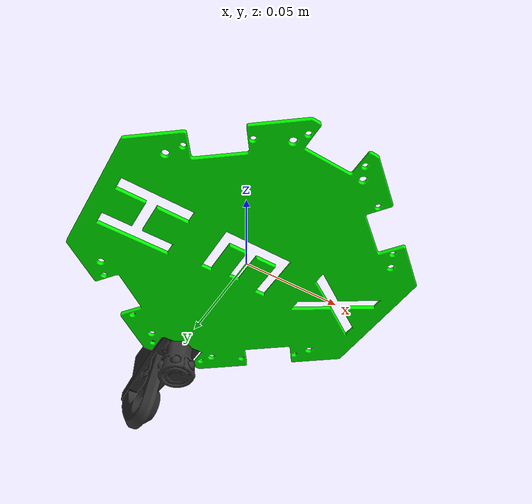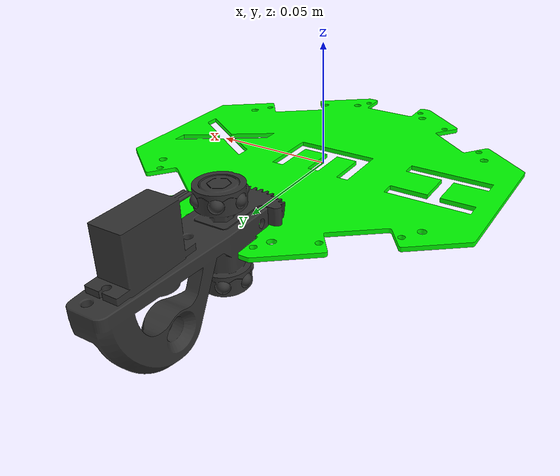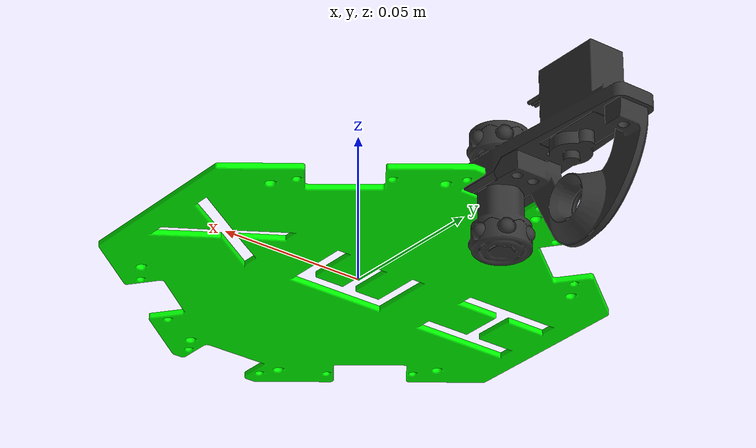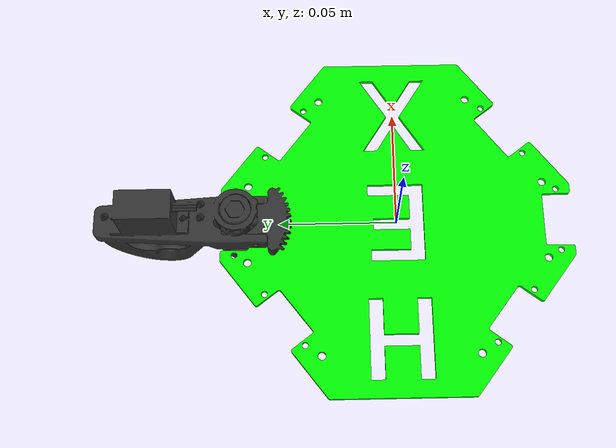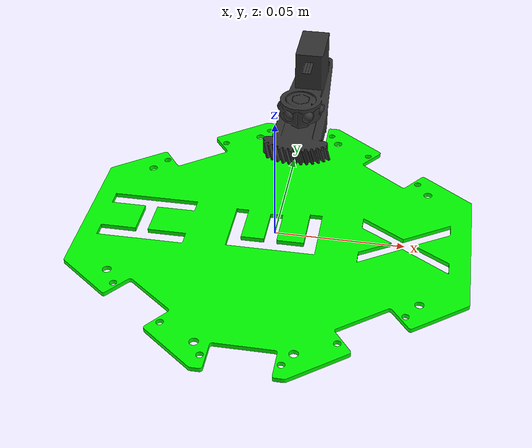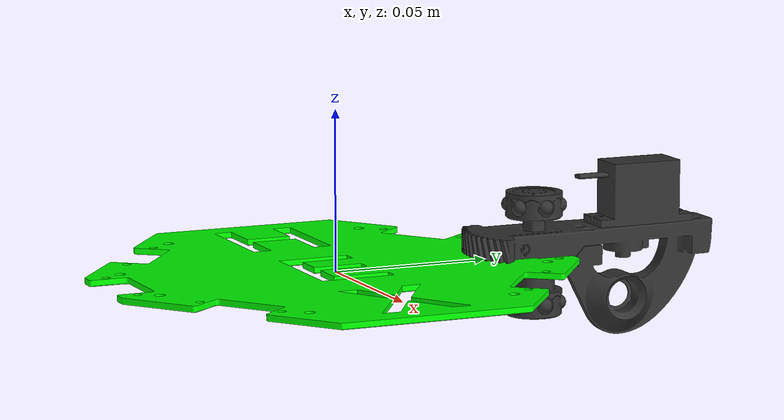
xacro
<?xml version="1.0"?>
<robot xmlns:xacro="http://www.ros.org/wiki/xacro" name="hexapod">

    <xacro:arg name="robot_name" default="hexapod"/>
    <xacro:arg name="use_gazebo" default="false"/>

    <xacro:include filename="$(find hexapod_description)/urdf/platform/platform.xacro"/>
    <xacro:include filename="$(find hexapod_description)/urdf/up_section/up_section.xacro"/>

    <xacro:platform_macro/>

    <xacro:up_section_macro/>

</robot>

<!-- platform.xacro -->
<robot name="hexapod" xmlns:xacro="http://www.ros.org/wiki/xacro">
  <xacro:property name="base_mass" value="4.6" />
  <xacro:property name="ixx" value="1.0"/>
  <xacro:property name="iyy" value="1.0"/>
  <xacro:property name="izz" value="1.0"/>

  <!-- Definicja makra 'platform' -->
  <xacro:macro name="platform_macro">
    <link name="base_link">
      <visual>
        <geometry>
          <mesh filename="file://$(find hexapod_description)/meshes/platform.stl"/>
        </geometry>
        <material name="green">
          <color rgba="0 1 0 1"/>
        </material>
        <origin xyz="0 0 0" rpy="0 0 0"/>
      </visual>
      <collision>
        <geometry>
          <mesh filename="file://$(find hexapod_description)/meshes/platform.stl"/>
        </geometry>
        <origin xyz="0 0 0" rpy="0 0 0"/>
      </collision>
      <inertial>
        <origin xyz="0 0 0" rpy="0 0 0"/>
        <mass value="${base_mass}"/>
        <inertia
          ixx="${ixx}" ixy="0.0" ixz="0.0"
          iyy="${iyy}" iyz="0.0"
          izz="${izz}"/>
      </inertial>
    </link>

    <gazebo reference="base_link">
      <visual>
        <material>
          <ambient>0 0.7 0 1</ambient>
          <diffuse>0 0.7 0 1</diffuse>
          <specular>0 0.7 0 1</specular>
        </material>
      </visual>
    </gazebo>
  </xacro:macro>

</robot>

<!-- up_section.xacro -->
<robot xmlns:xacro="http://www.ros.org/wiki/xacro">

  <xacro:property name="wheel_mass" value="1.0" />
  <xacro:property name="ixx" value="1.0" />
  <xacro:property name="iyy" value="1.0" />
  <xacro:property name="izz" value="1.0" />
<!-- tak można przekazać parametr -->

  <xacro:macro name="up_section_macro">
    <link name="up_section">
      <visual>
        <origin xyz="0.0 0.0 0.0" rpy="0.0 0.0 0.0"/>
        <geometry>
          <mesh filename="file://$(find hexapod_description)/meshes/leg_up.stl"/>
        </geometry>
        <material name="dark_gray">
          <color rgba="0.2 0.2 0.2 1.0"/>
        </material>
      </visual>

      <collision>
        <origin xyz="0.0 0.0 0.0" rpy="0.0 0.0 0.0"/>
        <geometry>
          <mesh filename="file://$(find hexapod_description)/meshes/leg_up.stl"/>
        </geometry>
      </collision>

      <inertial>
        <origin xyz="0.0 0.0 0.0" rpy="0.0 0.0 0.0"/>
        <mass value="${wheel_mass}"/>
        <inertia
          ixx="${ixx}" ixy="0.0" ixz="0.0"
          iyy="${iyy}" iyz="0.0"
          izz="${izz}"/>
      </inertial>
    </link>

    <joint name="up_section_joint_1" type="revolute">
      <axis xyz="0.0 0.0 1.0"/>
      <parent link="base_link"/>
      <child link="up_section"/>
      <origin xyz="0.0  0.069   0.000952" rpy="0.0 0.0 0.0"/>
      <!-- ograniczenie kątów -30 do 30 stopni -->
      <limit effort="5.0" velocity="1.0" lower="-0.5236" upper="0.5236"/>
    </joint>

    <gazebo reference="up_section">
      <surface>
        <friction>
          <ode>
              <mu>1.0</mu>
              <mu2>0.0</mu2>
          </ode>
        </friction>
      </surface>
      <visual>
          <material>
              <ambient>0.2 0.2 0.2 1.0</ambient>
              <diffuse>0.2 0.2 0.2 1.0</diffuse>
              <specular>0.2 0.2 0.2 1.0</specular>
              <emissive>0.0 0.0 0.0 0.0</emissive>
          </material>
      </visual>
  </gazebo>

  </xacro:macro>
</robot>
